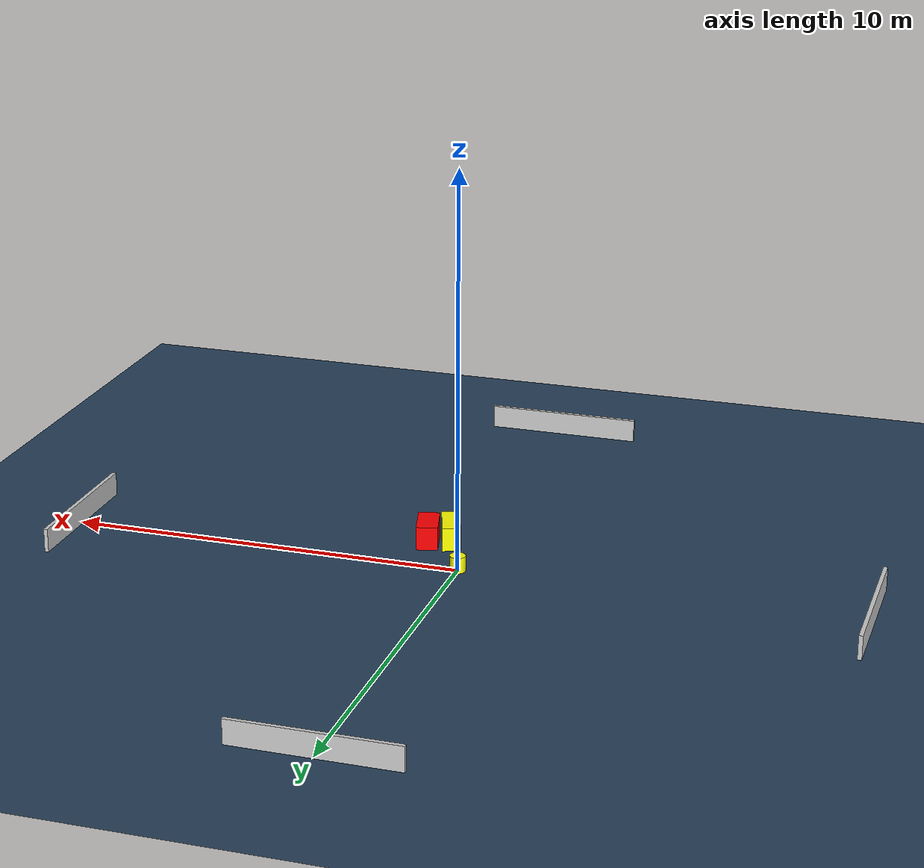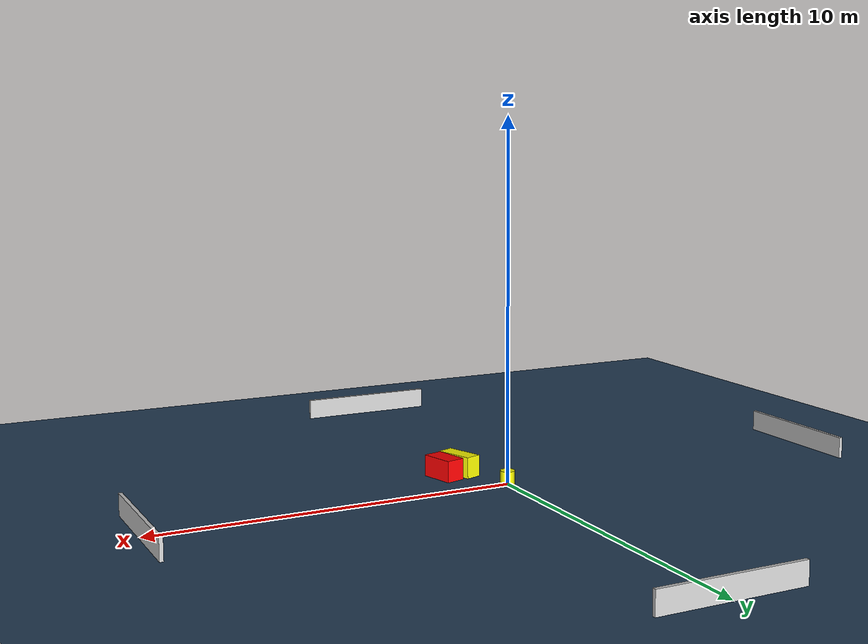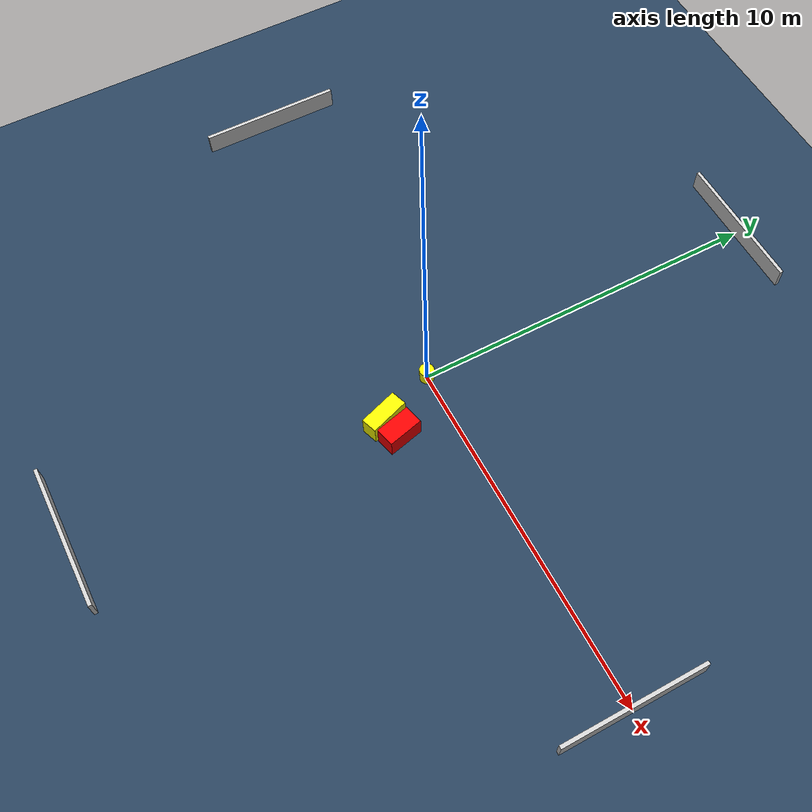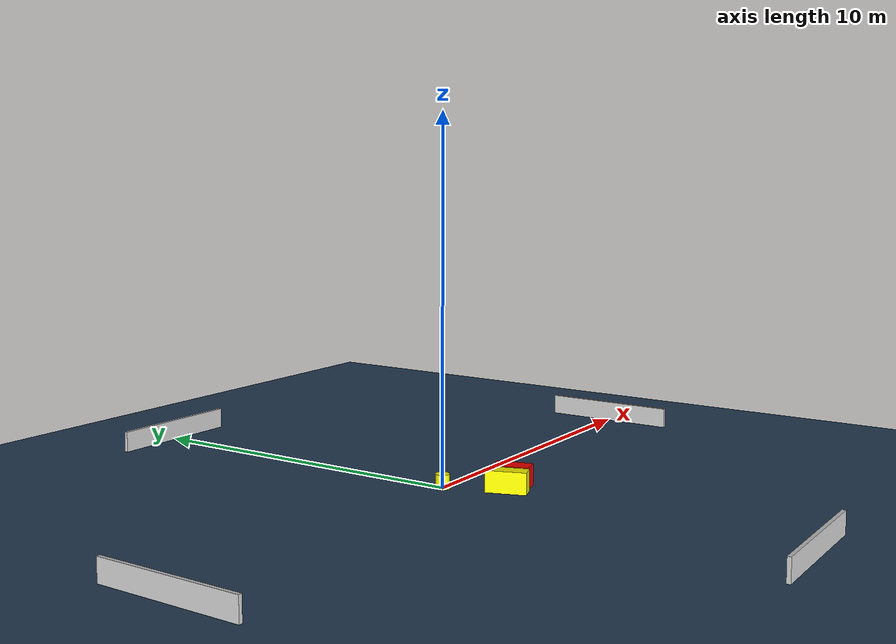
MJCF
<?xml version="1.0" ?>
<mujoco model="generated_environment">
  <option timestep="0.01" integrator="RK4" cone="elliptic"/>
  <default>
    <geom density="1"/>
  </default>
  <asset>
    <texture builtin="gradient" height="3072" name="skybox" rgb1="0.3 0.5 0.7" rgb2="0 0 0" type="skybox" width="512"/>
    <texture builtin="checker" height="300" name="groundplane" rgb1="0.2 0.3 0.4" rgb2="0.1 0.2 0.3" type="2d" width="300"/>
    <material name="groundplane" reflectance="0.2" texrepeat="5 5" texture="groundplane"/>
  </asset>
  <worldbody>
    <light dir="0 0 -1" directional="true" pos="0 0 1.5"/>
    <geom condim="3" friction="0.5 0.005 0.001" material="groundplane" name="floor" pos="0 0 0" size="0 0 0.05" type="plane"/>
    <body name="walls">
      <geom name="wall_1" condim="4" pos="-10.0 0.0 0.3" rgba="0.800000011920929 0.800000011920929 0.800000011920929 1.0" size="0.05 2.0 0.3" type="box"/>
      <geom name="wall_2" condim="4" pos="10.0 0.0 0.3" rgba="0.800000011920929 0.800000011920929 0.800000011920929 1.0" size="0.05 2.0 0.3" type="box"/>
      <geom name="wall_3" condim="4" pos="0.0 -10.0 0.3" rgba="0.800000011920929 0.800000011920929 0.800000011920929 1.0" size="2.0 0.05 0.3" type="box"/>
      <geom name="wall_4" condim="4" pos="0.0 10.0 0.3" rgba="0.800000011920929 0.800000011920929 0.800000011920929 1.0" size="2.0 0.05 0.3" type="box"/>
    </body>
    <body name="robot">
      <joint name="joint_x" type="slide" pos="0 0 0" axis="1 0 0"/>
      <joint name="joint_y" type="slide" pos="0 0 0" axis="0 1 0"/>
      <geom name="robot" type="cylinder" pos="0.0 0.0 0.2" size="0.2 0.2 0.0" mass="5.0" friction="1.0 0.005 0.0001" condim="4" rgba="1.0 1.0 0.0 1.0"/>
    </body>
    <body name="obstacle_1_movable">
      <geom name="obstacle_1_movable" condim="4" pos="0.6756199866358297 -1.604661786491226 0.3" euler="0 0 198.99276537739442" friction="0.0 0.005 0.001" rgba="1.0 1.0 0.0 1.0" size="0.22448632702546045 0.5570615252820045 0.3" type="box" mass="0.1"/>
      <joint type="free"/>
    </body>
    <body name="obstacle_2_static">
      <geom name="obstacle_2_static" condim="4" pos="1.2208188709154004 -1.4447508624866 0.3" euler="0 0 14.049578007657889" friction="0.0 0.005 0.001" rgba="1.0 0.0 0.0 1.0" size="0.2710733015083129 0.49765512023873537 0.3" type="box"/>
    </body>
  </worldbody>
  <actuator>
    <motor name="actuator_x" joint="joint_x" gear="1" ctrlrange="-1 1"/>
    <motor name="actuator_y" joint="joint_y" gear="1" ctrlrange="-1 1"/>
  </actuator>
</mujoco>
